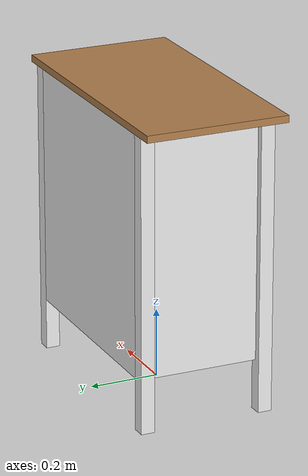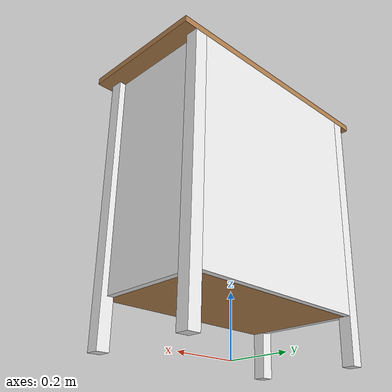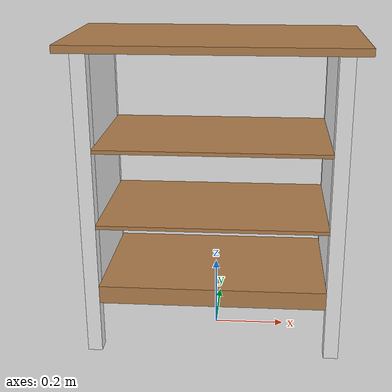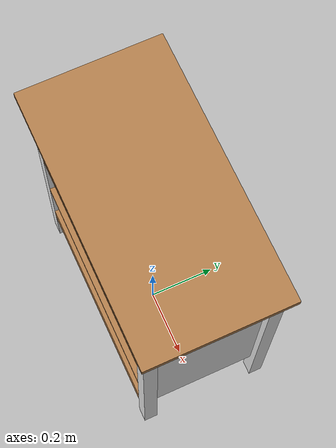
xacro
<?xml version="1.0"?>
<robot name="cabinet2"
	xmlns:xi="http://www.w3.org/2001/XInclude"
	xmlns:gazebo="http://playerstage.sourceforge.net/gazebo/xmlschema/#gz"
	xmlns:model="http://playerstage.sourceforge.net/gazebo/xmlschema/#model"
	xmlns:sensor="http://playerstage.sourceforge.net/gazebo/xmlschema/#sensor"
	xmlns:body="http://playerstage.sourceforge.net/gazebo/xmlschema/#body"
	xmlns:geom="http://playerstage.sourceforge.net/gazebo/xmlschema/#geom"
	xmlns:joint="http://playerstage.sourceforge.net/gazebo/xmlschema/#joint"
	xmlns:interface="http://playerstage.sourceforge.net/gazebo/xmlschema/#interface"
	xmlns:rendering="http://playerstage.sourceforge.net/gazebo/xmlschema/#rendering"
	xmlns:renderable="http://playerstage.sourceforge.net/gazebo/xmlschema/#renderable"
	xmlns:controller="http://playerstage.sourceforge.net/gazebo/xmlschema/#controller"
	xmlns:physics="http://playerstage.sourceforge.net/gazebo/xmlschema/#physics"
>

<!-- dummy_link -->
	<link name="dummy_link">
		<inertial>
			<origin xyz="0 0 0" />
			<mass value="5.0" />
			<inertia ixx="0.0" ixy="0.0" ixz="0.0" iyy="0.0" iyz="0.0" izz="0.0" />
		</inertial>
		<visual>
			<origin xyz="0 0 0" />
			<geometry>
				<box size="0.00 0.00 0.00" />
			</geometry>
		</visual>
		<collision>
			<origin xyz="0 0 0" />
			<geometry>
				<box size="0.00 0.00 0.00" />
			</geometry>
		</collision>
	</link>

<!-- cabinet -->

	<!-- cabinet_top -->
	<link name="cabinet_top">
		<inertial>
			<origin xyz="0 0 0" />
			<mass value="5.0" />
			<inertia ixx="0.0" ixy="0.0" ixz="0.0" iyy="0.0" iyz="0.0" izz="0.0" />
		</inertial>
		<visual>
			<origin xyz="0 0 0" />
			<geometry>
				<box size="0.78 0.41 0.02" />
			</geometry>
		</visual>
		<collision>
			<origin xyz="0 0 0" />
			<geometry>
				<box size="0.78 0.41 0.02" />
			</geometry>
		</collision>
	</link>

	<gazebo reference="cabinet_top">
		<material>IPA/Cabinet_Wood</material>
	</gazebo>

	<joint name="joint_cabinet_top" type="fixed">
		<origin xyz="0.000 0.000 0.850" rpy="0 0 0" />
		<parent link="dummy_link" />
		<child link="cabinet_top" />
	</joint>

	<!-- cabinet_middle1 -->
	<link name="cabinet_middle1">
		<inertial>
			<origin xyz="0 0 0" />
			<mass value="5.0" />
			<inertia ixx="0.0" ixy="0.0" ixz="0.0" iyy="0.0" iyz="0.0" izz="0.0" />
		</inertial>
		<visual>
			<origin xyz="0 0 0" />
			<geometry>
				<box size="0.62 0.37 0.01" />
			</geometry>
		</visual>
		<collision>
			<origin xyz="0 0 0" />
			<geometry>
				<box size="0.62 0.37 0.01" />
			</geometry>
		</collision>
	</link>

	<gazebo reference="cabinet_middle1">
		<material>IPA/Cabinet_Wood</material>
	</gazebo>

	<joint name="joint_cabinet_middle1" type="fixed">
		<origin xyz="0.000 0.000 0.585" rpy="0 0 0" />
		<parent link="dummy_link" />
		<child link="cabinet_middle1" />
	</joint>

	<!-- cabinet_middle2 -->
	<link name="cabinet_middle2">
		<inertial>
			<origin xyz="0 0 0" />
			<mass value="5.0" />
			<inertia ixx="0.0" ixy="0.0" ixz="0.0" iyy="0.0" iyz="0.0" izz="0.0" />
		</inertial>
		<visual>
			<origin xyz="0 0 0" />
			<geometry>
				<box size="0.62 0.37 0.01" />
			</geometry>
		</visual>
		<collision>
			<origin xyz="0 0 0" />
			<geometry>
				<box size="0.62 0.37 0.01" />
			</geometry>
		</collision>
	</link>

	<gazebo reference="cabinet_middle2">
		<material>IPA/Cabinet_Wood</material>
	</gazebo>

	<joint name="joint_cabinet_middle2" type="fixed">
		<origin xyz="0.000 0.000 0.375" rpy="0 0 0" />
		<parent link="dummy_link" />
		<child link="cabinet_middle2" />
	</joint>

	<!-- cabinet_bottom -->
	<link name="cabinet_bottom">
		<inertial>
			<origin xyz="0 0 0" />
			<mass value="5.0" />
			<inertia ixx="0.0" ixy="0.0" ixz="0.0" iyy="0.0" iyz="0.0" izz="0.0" />
		</inertial>
		<visual>
			<origin xyz="0 0 0" />
			<geometry>
				<box size="0.62 0.37 0.05" />
			</geometry>
		</visual>
		<collision>
			<origin xyz="0 0 0" />
			<geometry>
				<box size="0.62 0.37 0.05" />
			</geometry>
		</collision>
	</link>

	<gazebo reference="cabinet_bottom">
		<material>IPA/Cabinet_Wood</material>
	</gazebo>

	<joint name="joint_cabinet_bottom" type="fixed">
		<origin xyz="0.000 0.000 0.175" rpy="0 0 0" />
		<parent link="dummy_link" />
		<child link="cabinet_bottom" />
	</joint>

	<!-- cabinet_back -->
	<link name="cabinet_back">
		<inertial>
			<origin xyz="0 0 0" />
			<mass value="5.0" />
			<inertia ixx="0.0" ixy="0.0" ixz="0.0" iyy="0.0" iyz="0.0" izz="0.0" />
		</inertial>
		<visual>
			<origin xyz="0 0 0" />
			<geometry>
				<box size="0.62 0.02 0.69" />
			</geometry>
		</visual>
		<collision>
			<origin xyz="0 0 0" />
			<geometry>
				<box size="0.62 0.02 0.69" />
			</geometry>
		</collision>
	</link>

	<gazebo reference="cabinet_back">
		<material>IPA/Cabinet_White</material>
	</gazebo>

	<joint name="joint_cabinet_back" type="fixed">
		<origin xyz="0.000 0.195 0.495" rpy="0 0 0" />
		<parent link="dummy_link" />
		<child link="cabinet_back"/>
	</joint>

	<!-- cabinet_right -->
	<link name="cabinet_right">
		<inertial>
			<origin xyz="0 0 0" />
			<mass value="5.0" />
			<inertia ixx="0.0" ixy="0.0" ixz="0.0" iyy="0.0" iyz="0.0" izz="0.0" />
		</inertial>
		<visual>
			<origin xyz="0 0 0" />
			<geometry>
				<box size="0.02 0.31 0.69" />
			</geometry>
		</visual>
		<collision>
			<origin xyz="0 0 0" />
			<geometry>
				<box size="0.02 0.31 0.69" />
			</geometry>
		</collision>
	</link>

	<gazebo reference="cabinet_right">
		<material>IPA/Cabinet_White</material>
	</gazebo>

	<joint name="joint_cabinet_right" type="fixed">
		<origin xyz="0.320 0.010 0.495" rpy="0 0 0" />
		<parent link="dummy_link" />
		<child link="cabinet_right" />
	</joint>

	<!-- cabinet_left -->
	<link name="cabinet_left">
		<inertial>
			<origin xyz="0 0 0" />
			<mass value="5.0" />
			<inertia ixx="0.0" ixy="0.0" ixz="0.0" iyy="0.0" iyz="0.0" izz="0.0" />
		</inertial>
		<visual>
			<origin xyz="0 0 0" />
			<geometry>
				<box size="0.02 0.31 0.69" />
			</geometry>
		</visual>
		<collision>
			<origin xyz="0 0 0" />
			<geometry>
				<box size="0.02 0.31 0.69" />
			</geometry>
		</collision>
	</link>

	<gazebo reference="cabinet_left">
		<material>IPA/Cabinet_White</material>
	</gazebo>

	<joint name="joint_cabinet_left" type="fixed">
		<origin xyz="-0.320 0.010 0.495" rpy="0 0 0" />
		<parent link="dummy_link" />
		<child link="cabinet_left" />
	</joint>

	<!-- cabinet_front_right -->
	<link name="cabinet_front_right">
		<inertial>
			<origin xyz="0 0 0" />
			<mass value="5.0" />
			<inertia ixx="0.0" ixy="0.0" ixz="0.0" iyy="0.0" iyz="0.0" izz="0.0" />
		</inertial>
		<visual>
			<origin xyz="0 0 0" />
			<geometry>
				<box size="0.04 0.04 0.84" />
			</geometry>
		</visual>
		<collision>
			<origin xyz="0 0 0" />
			<geometry>
				<box size="0.04 0.04 0.84" />
			</geometry>
		</collision>
	</link>

	<gazebo reference="cabinet_front_right">
		<material>IPA/Cabinet_White</material>
	</gazebo>

	<joint name="joint_cabinet_front_right" type="fixed">
		<origin xyz="0.330 -0.165 0.420" rpy="0 0 0" />
		<parent link="dummy_link" />
		<child link="cabinet_front_right" />
	</joint>

	<!-- cabinet_front_left -->
	<link name="cabinet_front_left">
		<inertial>
			<origin xyz="0 0 0" />
			<mass value="5.0" />
			<inertia ixx="0.0" ixy="0.0" ixz="0.0" iyy="0.0" iyz="0.0" izz="0.0" />
		</inertial>
		<visual>
			<origin xyz="0 0 0" />
			<geometry>
				<box size="0.04 0.04 0.84" />
			</geometry>
		</visual>
		<collision>
			<origin xyz="0 0 0" />
			<geometry>
				<box size="0.04 0.04 0.84" />
			</geometry>
		</collision>
	</link>

	<gazebo reference="cabinet_front_left">
		<material>IPA/Cabinet_White</material>
	</gazebo>

	<joint name="joint_cabinet_front_left" type="fixed">
		<origin xyz="-0.330 -0.165 0.420" rpy="0 0 0" />
		<parent link="dummy_link" />
		<child link="cabinet_front_left" />
	</joint>

	<!-- cabinet_back_right -->
	<link name="cabinet_back_right">
		<inertial>
			<origin xyz="0 0 0" />
			<mass value="5.0" />
			<inertia ixx="0.0" ixy="0.0" ixz="0.0" iyy="0.0" iyz="0.0" izz="0.0" />
		</inertial>
		<visual>
			<origin xyz="0 0 0" />
			<geometry>
				<box size="0.04 0.04 0.84" />
			</geometry>
		</visual>
		<collision>
			<origin xyz="0 0 0" />
			<geometry>
				<box size="0.04 0.04 0.84" />
			</geometry>
		</collision>
	</link>

	<gazebo reference="cabinet_back_right">
		<material>IPA/Cabinet_White</material>
	</gazebo>

	<joint name="joint_cabinet_back_right" type="fixed">
		<origin xyz="0.330 0.185 0.420" rpy="0 0 0" />
		<parent link="dummy_link" />
		<child link="cabinet_back_right" />
	</joint>

	<!-- cabinet_back_left -->
	<link name="cabinet_back_left">
		<inertial>
			<origin xyz="0 0 0" />
			<mass value="5.0" />
			<inertia ixx="0.0" ixy="0.0" ixz="0.0" iyy="0.0" iyz="0.0" izz="0.0" />
		</inertial>
		<visual>
			<origin xyz="0 0 0" />
			<geometry>
				<box size="0.04 0.04 0.84" />
			</geometry>
		</visual>
		<collision>
			<origin xyz="0 0 0" />
			<geometry>
				<box size="0.04 0.04 0.84" />
			</geometry>
		</collision>
	</link>

	<gazebo reference="cabinet_back_left">
		<material>IPA/Cabinet_White</material>
	</gazebo>

	<joint name="joint_cabinet_back_left" type="fixed">
		<origin xyz="-0.330 0.185 0.420" rpy="0 0 0" />
		<parent link="dummy_link" />
		<child link="cabinet_back_left" />
	</joint>
<gazebo>
	<static>true</static>
</gazebo>
</robot>
